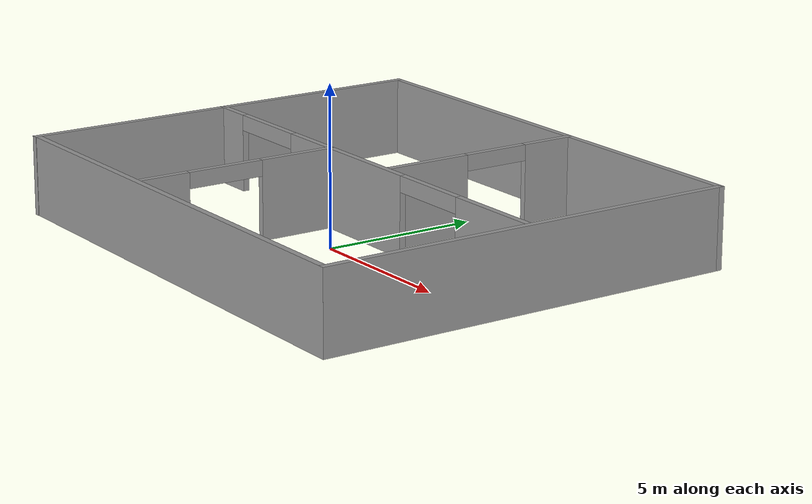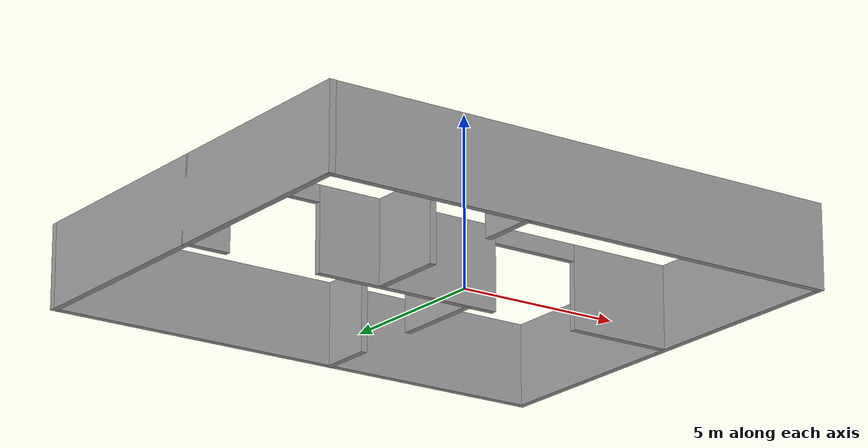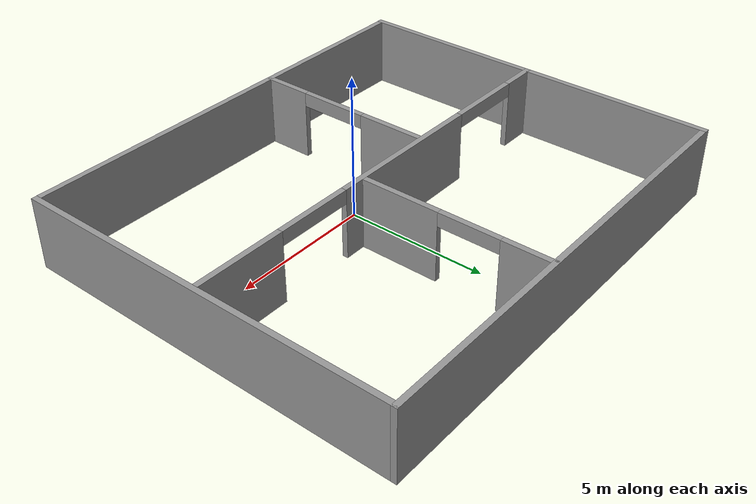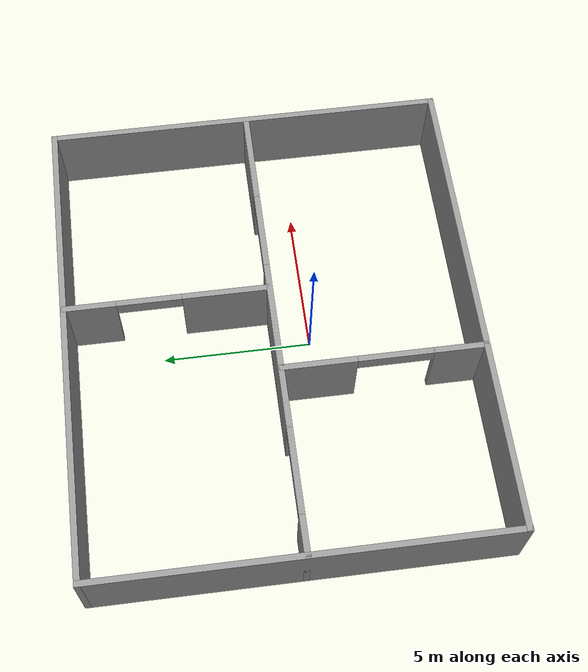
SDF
<?xml version='1.0'?>
<sdf version='1.4'>
  <model name='4rooms'>
    <link name='Wall_1'>
      <collision name='Wall_1_Collision'>
        <geometry>
          <box>
            <size>16.1684 0.2 2.5</size>
          </box>
        </geometry>
        <pose>0 0 1.25 0 -0 0</pose>
      </collision>
      <visual name='Wall_1_Visual'>
        <pose>0 0 1.25 0 -0 0</pose>
        <geometry>
          <box>
            <size>16.1684 0.2 2.5</size>
          </box>
        </geometry>
        <material>
          <script>
            <uri>file://media/materials/scripts/gazebo.material</uri>
            <name>Gazebo/Grey</name>
          </script>
        </material>
      </visual>
      <velocity_decay>
        <linear>0</linear>
        <angular>0</angular>
      </velocity_decay>
      <pose>-0.051984 -5.41928 0 0 -0 0</pose>
    </link>
    <link name='Wall_11'>
      <pose>1.05532 4.68139 0 0 0 -1.5708</pose>
      <visual name='Wall_11_Visual_0'>
        <pose>-2.52506 0 1.25 0 -0 0</pose>
        <geometry>
          <box>
            <size>1.79867 0.2 2.5</size>
          </box>
        </geometry>
        <material>
          <script>
            <uri>file://media/materials/scripts/gazebo.material</uri>
            <name>Gazebo/Grey</name>
          </script>
        </material>
      </visual>
      <collision name='Wall_11_Collision_0'>
        <geometry>
          <box>
            <size>1.79867 0.2 2.5</size>
          </box>
        </geometry>
        <pose>-2.52506 0 1.25 0 -0 0</pose>
      </collision>
      <visual name='Wall_11_Visual_1'>
        <pose>1.97979 0 1.25 0 -0 0</pose>
        <geometry>
          <box>
            <size>2.88921 0.2 2.5</size>
          </box>
        </geometry>
        <material>
          <script>
            <uri>file://media/materials/scripts/gazebo.material</uri>
            <name>Gazebo/Grey</name>
          </script>
        </material>
      </visual>
      <collision name='Wall_11_Collision_1'>
        <geometry>
          <box>
            <size>2.88921 0.2 2.5</size>
          </box>
        </geometry>
        <pose>1.97979 0 1.25 0 -0 0</pose>
      </collision>
      <visual name='Wall_11_Visual_2'>
        <pose>-0.545271 0 2.25 0 -0 0</pose>
        <geometry>
          <box>
            <size>2.1609 0.2 0.5</size>
          </box>
        </geometry>
        <material>
          <script>
            <uri>file://media/materials/scripts/gazebo.material</uri>
            <name>Gazebo/Grey</name>
          </script>
        </material>
      </visual>
      <collision name='Wall_11_Collision_2'>
        <geometry>
          <box>
            <size>2.1609 0.2 0.5</size>
          </box>
        </geometry>
        <pose>-0.545271 0 2.25 0 -0 0</pose>
      </collision>
    </link>
    <link name='Wall_2'>
      <collision name='Wall_2_Collision'>
        <geometry>
          <box>
            <size>13.6602 0.2 2.5</size>
          </box>
        </geometry>
        <pose>0 0 1.25 0 -0 0</pose>
      </collision>
      <visual name='Wall_2_Visual'>
        <pose>0 0 1.25 0 -0 0</pose>
        <geometry>
          <box>
            <size>13.6602 0.2 2.5</size>
          </box>
        </geometry>
        <material>
          <script>
            <uri>file://media/materials/scripts/gazebo.material</uri>
            <name>Gazebo/Grey</name>
          </script>
        </material>
      </visual>
      <velocity_decay>
        <linear>0</linear>
        <angular>0</angular>
      </velocity_decay>
      <pose>7.93223 1.31084 0 0 -0 1.5708</pose>
    </link>
    <link name='Wall_3'>
      <collision name='Wall_3_Collision'>
        <geometry>
          <box>
            <size>16.1882 0.2 2.5</size>
          </box>
        </geometry>
        <pose>0 0 1.25 0 -0 0</pose>
      </collision>
      <visual name='Wall_3_Visual'>
        <pose>0 0 1.25 0 -0 0</pose>
        <geometry>
          <box>
            <size>16.1882 0.2 2.5</size>
          </box>
        </geometry>
        <material>
          <script>
            <uri>file://media/materials/scripts/gazebo.material</uri>
            <name>Gazebo/Grey</name>
          </script>
        </material>
      </visual>
      <velocity_decay>
        <linear>0</linear>
        <angular>0</angular>
      </velocity_decay>
      <pose>-0.061873 8.04097 0 0 -0 3.14159</pose>
    </link>
    <link name='Wall_4'>
      <collision name='Wall_4_Collision'>
        <geometry>
          <box>
            <size>13.6735 0.2 2.5</size>
          </box>
        </geometry>
        <pose>0 0 1.25 0 -0 0</pose>
      </collision>
      <visual name='Wall_4_Visual'>
        <pose>0 0 1.25 0 -0 0</pose>
        <geometry>
          <box>
            <size>13.6735 0.2 2.5</size>
          </box>
        </geometry>
        <material>
          <script>
            <uri>file://media/materials/scripts/gazebo.material</uri>
            <name>Gazebo/Grey</name>
          </script>
        </material>
      </visual>
      <velocity_decay>
        <linear>0</linear>
        <angular>0</angular>
      </velocity_decay>
      <pose>-8.05598 1.30423 0 0 0 -1.5708</pose>
    </link>
    <link name='Wall_6'>
      <pose>-0.158344 1.25147 0 0 -0 0</pose>
      <visual name='Wall_6_Visual_0'>
        <pose>-7.30937 0 1.25 0 -0 0</pose>
        <geometry>
          <box>
            <size>1.37653 0.2 2.5</size>
          </box>
        </geometry>
        <material>
          <script>
            <uri>file://media/materials/scripts/gazebo.material</uri>
            <name>Gazebo/Grey</name>
          </script>
        </material>
      </visual>
      <collision name='Wall_6_Collision_0'>
        <geometry>
          <box>
            <size>1.37653 0.2 2.5</size>
          </box>
        </geometry>
        <pose>-7.30937 0 1.25 0 -0 0</pose>
      </collision>
      <visual name='Wall_6_Visual_1'>
        <pose>-0.86188 0 1.25 0 -0 0</pose>
        <geometry>
          <box>
            <size>5.85986 0.2 2.5</size>
          </box>
        </geometry>
        <material>
          <script>
            <uri>file://media/materials/scripts/gazebo.material</uri>
            <name>Gazebo/Grey</name>
          </script>
        </material>
      </visual>
      <collision name='Wall_6_Collision_1'>
        <geometry>
          <box>
            <size>5.85986 0.2 2.5</size>
          </box>
        </geometry>
        <pose>-0.86188 0 1.25 0 -0 0</pose>
      </collision>
      <visual name='Wall_6_Visual_2'>
        <pose>6.39472 0 1.25 0 -0 0</pose>
        <geometry>
          <box>
            <size>3.20582 0.2 2.5</size>
          </box>
        </geometry>
        <material>
          <script>
            <uri>file://media/materials/scripts/gazebo.material</uri>
            <name>Gazebo/Grey</name>
          </script>
        </material>
      </visual>
      <collision name='Wall_6_Collision_2'>
        <geometry>
          <box>
            <size>3.20582 0.2 2.5</size>
          </box>
        </geometry>
        <pose>6.39472 0 1.25 0 -0 0</pose>
      </collision>
      <visual name='Wall_6_Visual_3'>
        <pose>-5.20646 0 2.25 0 -0 0</pose>
        <geometry>
          <box>
            <size>2.8293 0.2 0.5</size>
          </box>
        </geometry>
        <material>
          <script>
            <uri>file://media/materials/scripts/gazebo.material</uri>
            <name>Gazebo/Grey</name>
          </script>
        </material>
      </visual>
      <collision name='Wall_6_Collision_3'>
        <geometry>
          <box>
            <size>2.8293 0.2 0.5</size>
          </box>
        </geometry>
        <pose>-5.20646 0 2.25 0 -0 0</pose>
      </collision>
      <visual name='Wall_6_Visual_4'>
        <pose>3.42993 0 2.25 0 -0 0</pose>
        <geometry>
          <box>
            <size>2.72376 0.2 0.5</size>
          </box>
        </geometry>
        <material>
          <script>
            <uri>file://media/materials/scripts/gazebo.material</uri>
            <name>Gazebo/Grey</name>
          </script>
        </material>
      </visual>
      <collision name='Wall_6_Collision_4'>
        <geometry>
          <box>
            <size>2.72376 0.2 0.5</size>
          </box>
        </geometry>
        <pose>3.42993 0 2.25 0 -0 0</pose>
      </collision>
    </link>
    <link name='Wall_8'>
      <pose>-1.89969 -2.07293 0 0 0 -1.5708</pose>
      <visual name='Wall_8_Visual_0'>
        <pose>-2.1205 0 1.25 0 -0 0</pose>
        <geometry>
          <box>
            <size>2.53743 0.2 2.5</size>
          </box>
        </geometry>
        <material>
          <script>
            <uri>file://media/materials/scripts/gazebo.material</uri>
            <name>Gazebo/Grey</name>
          </script>
        </material>
      </visual>
      <collision name='Wall_8_Collision_0'>
        <geometry>
          <box>
            <size>2.53743 0.2 2.5</size>
          </box>
        </geometry>
        <pose>-2.1205 0 1.25 0 -0 0</pose>
      </collision>
      <visual name='Wall_8_Visual_1'>
        <pose>2.50747 0 1.25 0 -0 0</pose>
        <geometry>
          <box>
            <size>1.76349 0.2 2.5</size>
          </box>
        </geometry>
        <material>
          <script>
            <uri>file://media/materials/scripts/gazebo.material</uri>
            <name>Gazebo/Grey</name>
          </script>
        </material>
      </visual>
      <collision name='Wall_8_Collision_1'>
        <geometry>
          <box>
            <size>1.76349 0.2 2.5</size>
          </box>
        </geometry>
        <pose>2.50747 0 1.25 0 -0 0</pose>
      </collision>
      <visual name='Wall_8_Visual_2'>
        <pose>0.386966 0 2.25 0 -0 0</pose>
        <geometry>
          <box>
            <size>2.47751 0.2 0.5</size>
          </box>
        </geometry>
        <material>
          <script>
            <uri>file://media/materials/scripts/gazebo.material</uri>
            <name>Gazebo/Grey</name>
          </script>
        </material>
      </visual>
      <collision name='Wall_8_Collision_2'>
        <geometry>
          <box>
            <size>2.47751 0.2 0.5</size>
          </box>
        </geometry>
        <pose>0.386966 0 2.25 0 -0 0</pose>
      </collision>
    </link>
    <static>1</static>
  </model>
</sdf>
